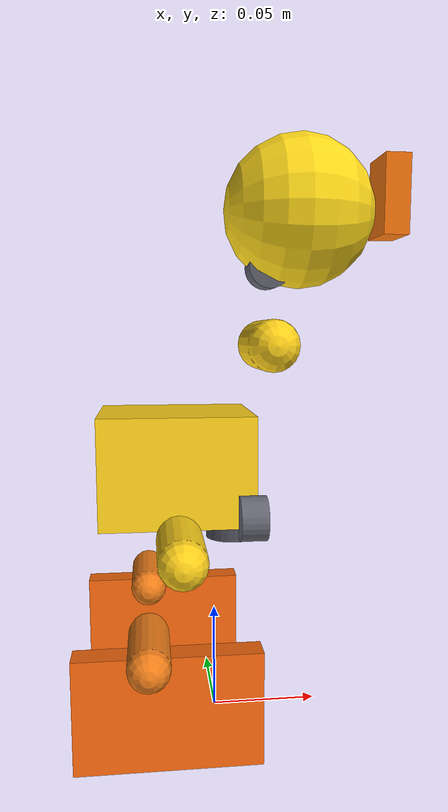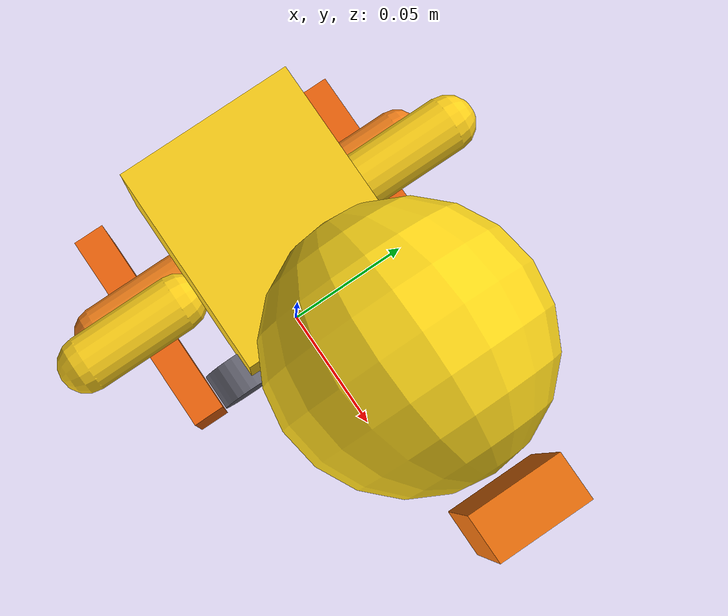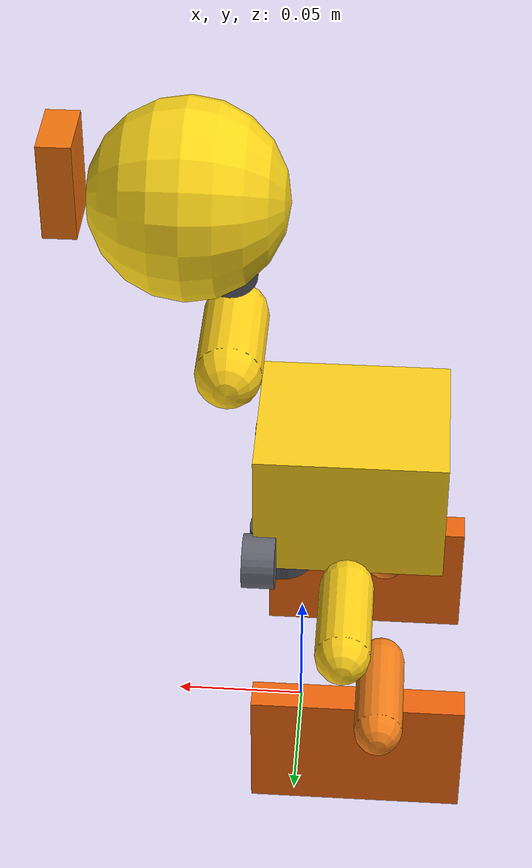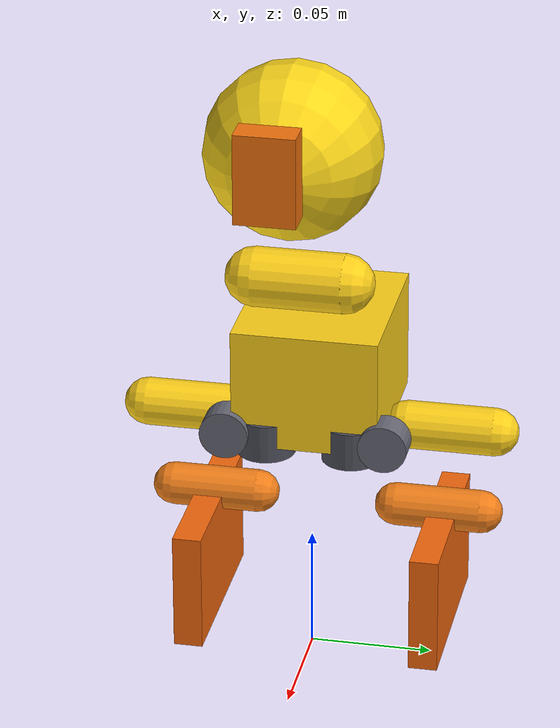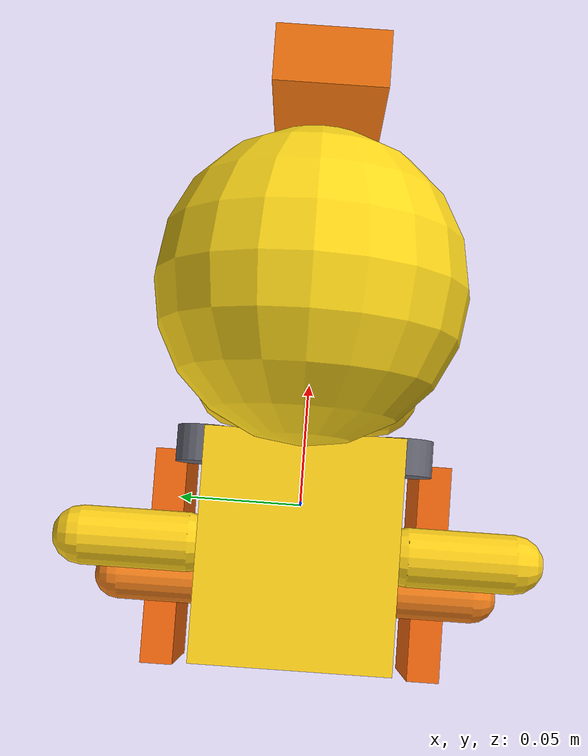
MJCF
<?xml version='1.0' encoding='utf-8'?>
<mujoco model="microduck">
  <compiler angle="radian" autolimits="true" />
  <worldbody>

    <body name="trunk_base" pos="0 0 0.12" quat="1 0 0 0">
      <freejoint name="trunk_base_freejoint" />
      <inertial pos="-0.0184191 6.58793e-06 0.00237545" mass="0.264385" fullinertia="0.00014465 0.000173927 0.000155277 1.1006e-08 -1.48335e-05 -7.0102e-08" />
      <geom name="trunk_geom" type="box" size="0.035 0.03 0.025" pos="-0.018 0 0.002" rgba="1.0 0.82 0.1 1" />

      <site group="3" name="imu_bno" pos="-0.032 0.0140011 0.0430618" quat="1 0 -0 -0" />
      <site group="3" name="imu" pos="-0.021 6.53121e-05 -0.0148911" quat="1 -0 0 0" />

      <body name="yaw2roll" pos="0.006 0.0175 -0.005" quat="0 -0.707107 -0.707107 -0">
        <joint axis="0 0 1" name="left_hip_yaw" type="hinge" range="-0.4363323129985824 0.5235987755982988" />
        <inertial pos="-8.6e-11 0.00121491 0.0169312" mass="0.0235131" fullinertia="4.332e-06 3.52213e-06 2.40737e-06 -0 -0 -6.1011e-08" />
        <geom name="left_hip_yaw_geom" type="cylinder" size="0.012 0.008" pos="0 0.001 0.016" rgba="0.3 0.3 0.35 1" />

        <body name="hip_l" pos="-0 0.0165 0.0125" quat="0.707107 -0.707107 -0 0">
          <joint axis="0 0 1" name="left_hip_roll" type="hinge" range="-0.3839724354387516 0.38397243543875337" />
          <inertial pos="0.0152731 1.5269e-08 -0.00887078" mass="0.00521" fullinertia="7.39697e-07 9.80856e-07 5.50165e-07 1e-12 3.32804e-07 -1e-12" />
          <geom name="left_hip_roll_geom" type="cylinder" size="0.01 0.006" pos="0.015 0 -0.008" rgba="0.4 0.4 0.45 1" />

          <body name="left_upper_leg" pos="0.025 0 -0.0185" quat="0.5 -0.5 0.5 -0.5">
            <joint axis="0 0 1" name="left_hip_pitch" type="hinge" range="-1.5707963267949037 1.5707963267948895" />
            <inertial pos="0.00731784 0.0224795 0.0124951" mass="0.04315" fullinertia="1.47473e-05 8.74297e-06 1.74437e-05 -4.30685e-06 2.48476e-07 3.43647e-07" />
            <geom name="left_thigh_geom" type="capsule" size="0.01 0.018" pos="0.007 0.022 0.012" rgba="1.0 0.82 0.1 1" />

            <body name="leg" pos="0.022 0.0357771 -0.004" quat="0 0.707107 0.707107 -0">
              <joint axis="0 0 1" name="left_knee" type="hinge" range="-1.570796326794901 1.5707963267948921" />
              <inertial pos="-1.52e-10 0.0318937 -0.00953505" mass="0.0215844" fullinertia="5.25054e-06 2.15507e-06 4.33924e-06 -1e-12 0 7.64996e-07" />
              <geom name="left_shin_geom" type="capsule" size="0.009 0.018" pos="0 0.03 -0.009" rgba="0.95 0.5 0.1 1" />

              <body name="ankle_left" pos="-0 0.042 -0.026" quat="0 1 0 -0">
                <joint axis="0 0 1" name="left_ankle" type="hinge" range="-1.5707963267949019 1.5707963267948912" />
                <inertial pos="-0.0064761 -0.0135798 -0.0156785" mass="0.0264653" fullinertia="5.54455e-06 1.04088e-05 7.28364e-06 -1.94121e-07 8.6681e-08 5.8663e-08" />
                <geom name="left_foot_geom" type="box" size="0.040 0.025 0.006" pos="-0.008 -0.013 -0.015" rgba="0.95 0.4 0.05 1" contype="1" conaffinity="1" friction="2.0 0.01 0.001" solref="0.004 1" solimp="0.95 0.99 0.001 0.5 2" />
                <site group="3" name="left_foot" pos="-0 -0.0237879 -0.0140852" quat="0 -0 0.707107 0.707107" />
              </body>
            </body>
          </body>
        </body>
      </body>

      <body name="neck" pos="0.026 0.0145011 0.0324424" quat="0 -0 -0.707107 0.707107">
        <joint axis="0 0 1" name="neck_pitch" type="hinge" range="-1.5707963267948966 1.0471975511965976" />
        <inertial pos="0 -0.025 0.0141665" mass="0.0368414" fullinertia="1.72925e-05 3.12694e-06 1.63707e-05 0 0 0" />
        <geom name="neck_geom" type="capsule" size="0.012 0.018" pos="0 -0.025 0.014" rgba="1.0 0.82 0.1 1" />

        <body name="neck_pitch" pos="0 -0.05 0" quat="0 1 0 0">
          <joint axis="0 0 1" name="head_pitch" type="hinge" range="-1.5707963267948966 1.5707963267948966" />
          <inertial pos="-6.533e-09 0.0116641 -0.0145" mass="0.00572" fullinertia="1.09186e-06 9.66855e-07 5.12111e-07 0 0 0" />
          <geom name="neck_pitch_geom" type="cylinder" size="0.01 0.008" pos="0 0.011 -0.014" rgba="0.35 0.35 0.4 1" />

          <body name="yaw_roll_motion" pos="-0 0.0186931 -0.0145" quat="0 -0 -0.707107 -0.707107">
            <joint axis="0 0 1" name="head_yaw" type="hinge" range="-2.967059728390364 2.967059728390357" />
            <inertial pos="-0.00140611 -0.00599577 0.0155412" mass="0.02492" fullinertia="3.73979e-06 3.14478e-06 4.07916e-06 1.87232e-07 4.603e-09 3.1883e-08" />
            <geom name="head_yaw_geom" type="cylinder" size="0.012 0.008" pos="-0.001 -0.005 0.015" rgba="0.3 0.3 0.35 1" />

            <body name="bottom_head_shell" pos="-0.0179 0 0.0145" quat="0.707107 -0 -0.707107 0">
              <joint axis="0 0 1" name="head_roll" type="hinge" range="-0.4363323129986037 0.43633231299856107" />
              <inertial pos="0.00368889 0.00145319 -0.0329861" mass="0.172649" fullinertia="0.000292186 0.000223546 0.000142648 -1.11987e-06 3.85879e-06 3.78829e-06" />
              <geom name="head_geom" type="sphere" size="0.035" pos="0.003 0.001 -0.032" rgba="1.0 0.85 0.1 1" />
              <geom name="beak_geom" type="box" size="0.018 0.012 0.006" pos="0.01 0 -0.075" rgba="0.95 0.45 0.05 1" />
              <geom name="left_eye" type="sphere" size="0.004" pos="0.02 0.02 -0.04" rgba="0.1 0.1 0.1 1" />
              <geom name="right_eye" type="sphere" size="0.004" pos="0.02 -0.02 -0.04" rgba="0.1 0.1 0.1 1" />

              <site group="3" name="head_camera" pos="0.01175 0 -0.0735" quat="0.707107 0 0.707107 -0" />
              <site group="3" name="mouth_tip" pos="-0.00829334 0 -0.0777383" quat="0.658004 -0.0201775 0.75239 0.0230718" />
              <site group="3" name="tof" pos="0.0143 0.0225 -0.0735" quat="0.707107 0 0.707107 -0" />
              <site group="3" name="head_imu" pos="0.0114823 0.000202447 -0.05126" quat="1 0 0 -0" />
            </body>
          </body>
        </body>
      </body>

      <body name="bearing_roll" pos="0.006 -0.0175 -0.005" quat="0 -0.707107 -0.707107 -0">
        <joint axis="0 0 1" name="right_hip_yaw" type="hinge" range="-0.5235987755982988 0.4363323129985824" />
        <inertial pos="-8.6e-11 0.00121491 0.0169312" mass="0.0235131" fullinertia="4.332e-06 3.52213e-06 2.40737e-06 -0 -0 -6.1011e-08" />
        <geom name="right_hip_yaw_geom" type="cylinder" size="0.012 0.008" pos="0 0.001 0.016" rgba="0.3 0.3 0.35 1" />

        <body name="hip_l_2" pos="-0 0.0165 0.0125" quat="0 -0 0.707107 0.707107">
          <joint axis="0 0 1" name="right_hip_roll" type="hinge" range="-0.3839724354387525 0.3839724354387525" />
          <inertial pos="0.0152731 1.5309e-08 -0.00887078" mass="0.00521" fullinertia="7.39697e-07 9.80856e-07 5.50165e-07 1e-12 3.32804e-07 -1e-12" />
          <geom name="right_hip_roll_geom" type="cylinder" size="0.01 0.006" pos="0.015 0 -0.008" rgba="0.4 0.4 0.45 1" />

          <body name="right_upper_leg" pos="0.025 0 -0.0185" quat="0.5 -0.5 0.5 -0.5">
            <joint axis="0 0 1" name="right_hip_pitch" type="hinge" range="-1.5707963267949 1.570796326794893" />
            <inertial pos="-0.00731784 0.0224795 0.0124951" mass="0.04315" fullinertia="1.47473e-05 8.74297e-06 1.74437e-05 4.30685e-06 -2.48476e-07 3.43648e-07" />
            <geom name="right_thigh_geom" type="capsule" size="0.01 0.018" pos="-0.007 0.022 0.012" rgba="1.0 0.82 0.1 1" />

            <body name="leg_2" pos="-0.022 0.0357771 -0.004" quat="0 1 -0 -0">
              <joint axis="0 0 1" name="right_knee" type="hinge" range="-1.570796326794901 1.5707963267948921" />
              <inertial pos="-0.0318937 -1.52e-10 -0.00953505" mass="0.0215844" fullinertia="2.15507e-06 5.25054e-06 4.33924e-06 1e-12 -7.64996e-07 0" />
              <geom name="right_shin_geom" type="capsule" size="0.009 0.018" pos="-0.03 0 -0.009" rgba="0.95 0.5 0.1 1" />

              <body name="ankle_right" pos="-0.042 -0 -0.026" quat="0 -0.707107 0.707107 0">
                <joint axis="0 0 1" name="right_ankle" type="hinge" range="-1.5707963267949028 1.5707963267948903" />
                <inertial pos="-0.00647683 0.0135791 -0.0156784" mass="0.0264654" fullinertia="5.54401e-06 1.04095e-05 7.28472e-06 1.94071e-07 8.5523e-08 -5.871e-08" />
                <geom name="right_foot_geom" type="box" size="0.040 0.025 0.006" pos="-0.008 0.013 -0.015" rgba="0.95 0.4 0.05 1" contype="1" conaffinity="1" friction="2.0 0.01 0.001" solref="0.004 1" solimp="0.95 0.99 0.001 0.5 2" />
                <site group="3" name="right_foot" pos="-0 0.0237879 -0.0140852" quat="0 -0 0.707107 -0.707107" />
              </body>
            </body>
          </body>
        </body>
      </body>
    </body>
  </worldbody>

  <sensor>
    <gyro name="imu_ang_vel" site="imu"/>
    <accelerometer name="imu_accel" site="imu"/>
  </sensor>

  <default>
    <joint damping="0.05" armature="0.003" frictionloss="0.01"/>
    <position kp="40" kv="2.0" forcerange="-2.5 2.5" ctrllimited="true"/>
    <geom contype="0" conaffinity="0" friction="1.5 0.005 0.0001"/>
  </default>

  <actuator>
    <position name="motor_left_hip_yaw" joint="left_hip_yaw" ctrlrange="-0.436 0.524"/>
    <position name="motor_left_hip_roll" joint="left_hip_roll" ctrlrange="-0.384 0.384"/>
    <position name="motor_left_hip_pitch" joint="left_hip_pitch" ctrlrange="-1.571 1.571"/>
    <position name="motor_left_knee" joint="left_knee" ctrlrange="-1.571 1.571"/>
    <position name="motor_left_ankle" joint="left_ankle" ctrlrange="-1.571 1.571"/>
    <position name="motor_neck_pitch" joint="neck_pitch" kp="80" kv="2" ctrlrange="-1.571 1.047"/>
    <position name="motor_head_pitch" joint="head_pitch" kp="80" kv="2" ctrlrange="-1.571 1.571"/>
    <position name="motor_head_yaw" joint="head_yaw" kp="80" kv="2" ctrlrange="-2.967 2.967"/>
    <position name="motor_head_roll" joint="head_roll" kp="80" kv="2" ctrlrange="-0.436 0.436"/>
    <position name="motor_right_hip_yaw" joint="right_hip_yaw" ctrlrange="-0.524 0.436"/>
    <position name="motor_right_hip_roll" joint="right_hip_roll" ctrlrange="-0.384 0.384"/>
    <position name="motor_right_hip_pitch" joint="right_hip_pitch" ctrlrange="-1.571 1.571"/>
    <position name="motor_right_knee" joint="right_knee" ctrlrange="-1.571 1.571"/>
    <position name="motor_right_ankle" joint="right_ankle" ctrlrange="-1.571 1.571"/>
  </actuator>
</mujoco>
